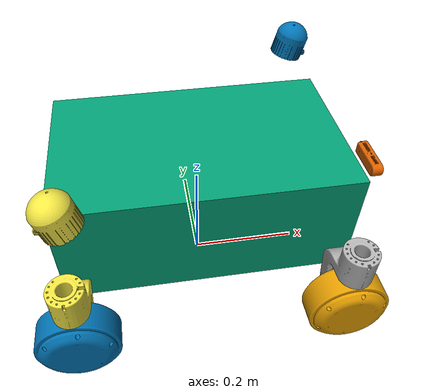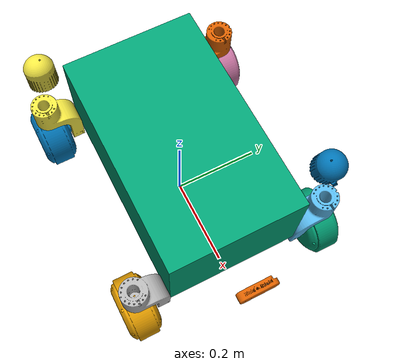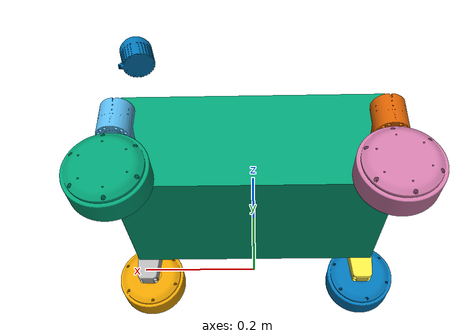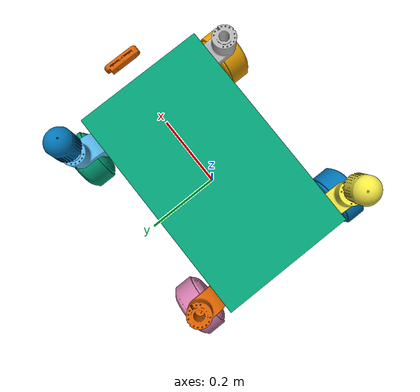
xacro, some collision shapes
<robot name="LinkHou_S2" xmlns:xacro="http://www.ros.org/wiki/xacro">

	<xacro:property name="PI" value="3.1415926535897931"/>

	<link name="base_footprint"/>
	<joint name="base_footprint_joint" type="fixed">
		<parent link="base_footprint"/>
		<child link="base_link"/>
		<origin xyz="0 0 0.04"/>
	</joint>

	<link name="base_link"/>
	<joint name="base_link_mount" type="fixed">
		<parent link="base_link"/>
		<child link="chassis_base"/>
		<origin rpy="0 0 ${PI}"/>
	</joint>

	<link name="chassis_base">
		<inertial>
			<origin xyz="-0.010273 0.00026047 0.1315"/>
			<mass value="87.15"/>
			<inertia
					ixx="0.83411"
					ixy="-0.00032119"
					ixz="0.004604"
					iyy="1.4167"
					iyz="7.1643E-05"
					izz="1.7214"/>
		</inertial>
		<visual>
			<geometry>
				<mesh filename="file://$(find fiveages_w2_description)/meshes/linkhou_s2/base_link.obj"/>
			</geometry>
		</visual>
		<collision>
			<origin xyz="0 0 0.15"/>
			<geometry>
				<box size="0.5 0.3 0.2"/>
			</geometry>
		</collision>
	</link>

	<link name="rr_steer">
		<inertial>
			<origin xyz="-0.00067026 -0.024202 -0.061733"/>
			<mass value="0.65556"/>
			<inertia
					ixx="0.00076736"
					ixy="-1.7164E-08"
					ixz="-3.4992E-07"
					iyy="0.00058611"
					iyz="-0.00023947"
					izz="0.00052471"/>
		</inertial>
		<visual>
			<geometry>
				<mesh filename="file://$(find fiveages_w2_description)/meshes/linkhou_s2/steer_link.obj" scale="1 -1 1"/>
			</geometry>
		</visual>
	</link>

	<joint name="rr_steer_joint" type="revolute">
		<origin xyz="-0.23072 -0.21738 0.166"/>
		<parent link="base_link"/>
		<child link="rr_steer"/>
		<axis xyz="0 0 1"/>
		<limit lower="-${PI}" upper="${PI}" effort="5" velocity="6.28"/>
	</joint>

	<link name="rr_wheel">
		<inertial>
			<origin xyz="-9.5495E-06 -0.00099178 6.4755E-06"/>
			<mass value="1.2283"/>
			<inertia
					ixx="0.0020567"
					ixy="-3.2625E-08"
					ixz="-1.1187E-07"
					iyy="0.0037677"
					iyz="1.4797E-07"
					izz="0.0020568"/>
		</inertial>
		<visual>
			<geometry>
				<mesh filename="file://$(find fiveages_w2_description)/meshes/linkhou_s2/wheel.obj" scale="1 -1 1"/>
			</geometry>
		</visual>
		<collision>
			<origin rpy="${PI/2.0} 0 0"/>
			<geometry>
				<cylinder radius="0.07" length="0.046"/>
			</geometry>
		</collision>
	</link>

	<joint name="rr_wheel_joint" type="continuous">
		<origin xyz="-0.00071653 -0.003566 -0.136"/>
		<parent link="rr_steer"/>
		<child link="rr_wheel"/>
		<axis xyz="0 1 0"/>
	</joint>

	<link name="rl_steer">
		<inertial>
			<origin xyz="0.00067026 0.024202 -0.061733"/>
			<mass value="0.65556"/>
			<inertia
					ixx="0.00076736"
					ixy="-1.7163E-08"
					ixz="3.4992E-07"
					iyy="0.00058611"
					iyz="0.00023947"
					izz="0.00052471"/>
		</inertial>
		<visual>
			<geometry>
				<mesh filename="file://$(find fiveages_w2_description)/meshes/linkhou_s2/steer_link.obj"/>
			</geometry>
		</visual>
	</link>

	<joint name="rl_steer_joint" type="revolute">
		<origin xyz="-0.22928 0.21738 0.166"/>
		<parent link="base_link"/>
		<child link="rl_steer"/>
		<axis xyz="0 0 1"/>
		<limit lower="-${PI}" upper="${PI}" effort="5" velocity="6.28"/>
	</joint>

	<link name="rl_wheel">
		<inertial>
			<origin xyz="-6.77013827887762E-06 0.000991778701903534 9.34293679251755E-06"/>
			<mass value="1.22832806539885"/>
			<inertia
					ixx="0.0020567891793888"
					ixy="1.48916704553435E-07"
					ixz="-1.10605927530389E-07"
					iyy="0.0037676756883782"
					iyz="-2.79953606372295E-08"
					izz="0.00205674185492585"/>
		</inertial>
		<visual>
			<geometry>
				<mesh filename="file://$(find fiveages_w2_description)/meshes/linkhou_s2/wheel.obj"/>
			</geometry>
		</visual>
		<collision>
			<origin rpy="${PI/2.0} 0 0"/>
			<geometry>
				<cylinder radius="0.07" length="0.046"/>
			</geometry>
		</collision>
	</link>

	<joint name="rl_wheel_joint" type="continuous">
		<origin xyz="0.00071653 0.003566 -0.136"/>
		<parent link="rl_steer"/>
		<child link="rl_wheel"/>
		<axis xyz="0 1 0"/>
	</joint>

	<link name="fr_steer">
		<inertial>
			<origin xyz="-0.00067026 -0.024202 -0.061733"/>
			<mass value="0.65556"/>
			<inertia
					ixx="0.00076736"
					ixy="-1.7163E-08"
					ixz="-3.4992E-07"
					iyy="0.00058611"
					iyz="-0.00023947"
					izz="0.00052471"/>
		</inertial>
		<visual>
			<geometry>
				<mesh filename="file://$(find fiveages_w2_description)/meshes/linkhou_s2/steer_link.obj" scale="1 -1 1"/>
			</geometry>
		</visual>
	</link>

	<joint name="fr_steer_joint" type="revolute">
		<origin xyz="0.22928 -0.21738 0.166"/>
		<parent link="base_link"/>
		<child link="fr_steer"/>
		<axis xyz="0 0 1"/>
		<limit lower="-${PI}" upper="${PI}" effort="5" velocity="6.28"/>
	</joint>

	<link name="fr_wheel">
		<inertial>
			<origin xyz="-6.4606E-06 -0.00099178 9.5769E-06"/>
			<mass value="1.2283"/>
			<inertia
					ixx="0.0020567"
					ixy="2.462E-08"
					ixz="-6.9326E-08"
					iyy="0.0037677"
					iyz="1.4949E-07"
					izz="0.0020569"/>
		</inertial>
		<visual>
			<geometry>
				<mesh filename="file://$(find fiveages_w2_description)/meshes/linkhou_s2/wheel.obj" scale="1 -1 1"/>
			</geometry>
		</visual>
		<collision>
			<origin rpy="${PI/2.0} 0 0"/>
			<geometry>
				<cylinder radius="0.07" length="0.046"/>
			</geometry>
		</collision>
	</link>

	<joint name="fr_wheel_joint" type="continuous">
		<origin xyz="-0.00071653 -0.003566 -0.136"/>
		<parent link="fr_steer"/>
		<child link="fr_wheel"/>
		<axis xyz="0 1 0"/>
	</joint>

	<link name="fl_steer">
		<inertial>
			<origin xyz="0.00067026110136939 0.024201895934192 -0.0617332783946613"/>
			<mass value="0.655558098590739"/>
			<inertia
					ixx="0.00076735828499042"
					ixy="-1.71633678730281E-08"
					ixz="3.49915403143955E-07"
					iyy="0.000586107112558297"
					iyz="0.000239471330998281"
					izz="0.000524706735782284"/>
		</inertial>
		<visual>
			<geometry>
				<mesh filename="file://$(find fiveages_w2_description)/meshes/linkhou_s2/steer_link.obj"/>
			</geometry>
		</visual>
	</link>

	<joint name="fl_steer_joint" type="revolute">
		<origin xyz="0.23072 0.21738 0.166"/>
		<parent link="base_link"/>
		<child link="fl_steer"/>
		<axis xyz="0 0 1"/>
		<limit lower="-${PI}" upper="${PI}" effort="5" velocity="6.28"/>
	</joint>

	<link name="fl_wheel">
		<inertial>
			<origin xyz="-8.3207E-06 0.00099179 8.0258E-06"/>
			<mass value="1.2283"/>
			<inertia
					ixx="0.0020568"
					ixy="1.515E-07"
					ixz="-9.5872E-08"
					iyy="0.0037677"
					iyz="-1.7122E-09"
					izz="0.0020567"/>
		</inertial>
		<visual>
			<geometry>
				<mesh filename="file://$(find fiveages_w2_description)/meshes/linkhou_s2/wheel.obj"/>
			</geometry>
		</visual>
		<collision>
			<origin rpy="${PI/2.0} 0 0"/>
			<geometry>
				<cylinder radius="0.07" length="0.046"/>
			</geometry>
		</collision>
	</link>

	<joint name="fl_wheel_joint" type="continuous">
		<origin xyz="0.00071653 -0.003566 -0.136"/>
		<parent link="fl_steer"/>
		<child link="fl_wheel"/>
		<axis xyz="0 1 0"/>
	</joint>

	<link name="rr_lidar">
		<inertial>
			<origin xyz="0.27366 -0.0075 -0.00664"/>
			<mass value="3696.2"/>
			<inertia
					ixx="830.34"
					ixy="-2.1461E-08"
					ixz="2.8038E-08"
					iyy="538.42"
					iyz="2.5514E-08"
					izz="538.42"/>
		</inertial>
		<visual>
			<geometry>
				<mesh filename="file://$(find fiveages_w2_description)/meshes/linkhou_s2/lidar.obj"/>
			</geometry>
		</visual>
		<collision>
			<geometry>
				<mesh filename="file://$(find fiveages_w2_description)/meshes/linkhou_s2/lidar.obj"/>
			</geometry>
		</collision>
	</link>

	<joint name="rr_lidar_joint" type="fixed">
		<origin xyz="0.21412 0.19406 0.32957" rpy="${PI/2.0} -1.309 0"/>
		<parent link="chassis_base"/>
		<child link="rr_lidar"/>
	</joint>

	<link name="fl_lidar">
		<inertial>
			<origin xyz="0.27366 -0.0075 -0.00664"/>
			<mass value="3696.2"/>
			<inertia
					ixx="830.34"
					ixy="-2.1461E-08"
					ixz="2.8038E-08"
					iyy="538.42"
					iyz="2.5514E-08"
					izz="538.42"/>
		</inertial>
		<visual>
			<geometry>
				<mesh filename="file://$(find fiveages_w2_description)/meshes/linkhou_s2/lidar.obj"/>
			</geometry>
		</visual>
		<collision>
			<geometry>
				<mesh filename="file://$(find fiveages_w2_description)/meshes/linkhou_s2/lidar.obj"/>
			</geometry>
		</collision>
	</link>

	<joint name="fl_lidar_joint" type="fixed">
		<origin xyz="-0.21412 -0.19406 0.32957" rpy="${PI/2.0} -1.309 3.1416"/>
		<parent link="chassis_base"/>
		<child link="fl_lidar"/>
	</joint>

	<link name="chassis_camera">
		<visual>
			<geometry>
				<mesh filename="file://$(find fiveages_w2_description)/meshes/linkhou_s2/camera.obj"/>
			</geometry>
		</visual>
		<collision>
			<geometry>
				<mesh filename="file://$(find fiveages_w2_description)/meshes/linkhou_s2/camera.obj"/>
			</geometry>
		</collision>
	</link>

	<joint name="chassis_camera_joint" type="fixed">
		<origin xyz="-0.3438 -0.00032028 0.159" rpy="0 0 ${PI}"/>
		<parent link="chassis_base"/>
		<child link="chassis_camera"/>
	</joint>

</robot>
